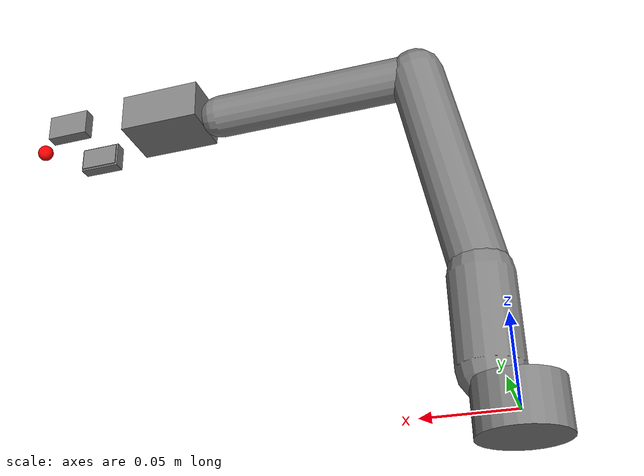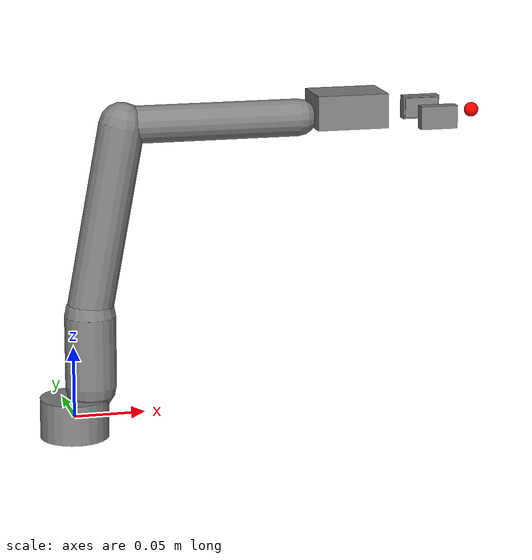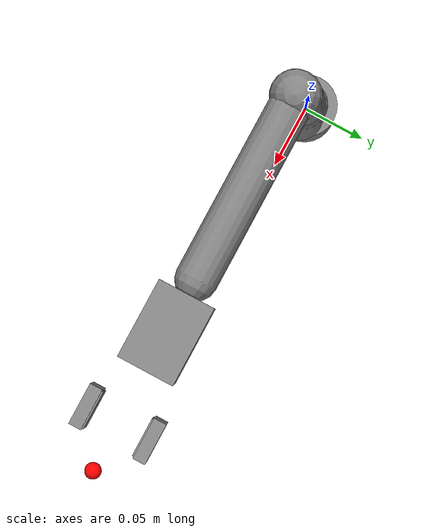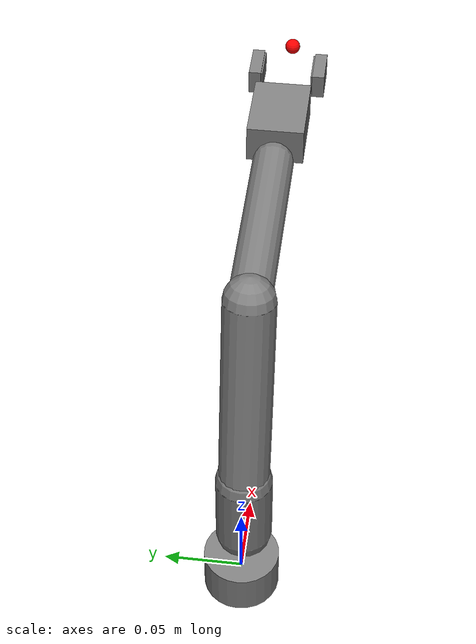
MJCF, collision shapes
<mujoco model="open_manipulator_x">
  <compiler meshdir="../meshes" angle="radian" autolimits="true"/>

  <option timestep="0.002" gravity="0 0 -9.81" integrator="implicitfast"/>

  <default>
    <joint armature="0.01"/>
    <default class="visual">
      <geom contype="0" conaffinity="0" group="0"/>
    </default>
    <default class="collision">
      <geom group="1" condim="4" friction="1.0 0.005 0.0001"/>
    </default>
  </default>

  <asset>
    <mesh name="link1" file="link1.stl" scale="0.001 0.001 0.001"/>
    <mesh name="link2" file="link2.stl" scale="0.001 0.001 0.001"/>
    <mesh name="link3" file="link3.stl" scale="0.001 0.001 0.001"/>
    <mesh name="link4" file="link4.stl" scale="0.001 0.001 0.001"/>
    <mesh name="link5" file="link5.stl" scale="0.001 0.001 0.001"/>
    <mesh name="gripper_left" file="gripper_left_palm.stl" scale="0.001 0.001 0.001"/>
    <mesh name="gripper_right" file="gripper_right_palm.stl" scale="0.001 0.001 0.001"/>

    <material name="grey" rgba="0.5 0.5 0.5 1"/>
    <material name="dark_grey" rgba="0.3 0.3 0.3 1"/>
    <material name="red" rgba="0.8 0.0 0.0 1"/>
    <material name="finger" rgba="0.4 0.4 0.4 1"/>
  </asset>

  <worldbody>
    <!-- Robot base (fixed to world) -->
    <body name="link1" pos="0 0 0">
      <inertial pos="3.0876154e-04 0 -1.2176461e-04" mass="0.079119962"
                fullinertia="1.2505234e-05 2.1898364e-05 1.9267361e-05 0 -1.7855208e-07 0"/>
      <geom type="mesh" mesh="link1" material="grey" class="visual"/>
      <geom type="cylinder" size="0.024 0.014" pos="0 0 0" class="collision"/>

      <body name="link2" pos="0.012 0 0.017">
        <joint name="joint1" type="hinge" axis="0 0 1" range="-3.14159 3.14159" damping="0.1"/>
        <inertial pos="-3.0184870e-04 5.4043684e-04 0.047433464" mass="0.098406837"
                  fullinertia="3.4543422e-05 3.2689329e-05 1.8850320e-05
                               -1.6031095e-08 -3.8375155e-07 2.8511935e-08"/>
        <geom type="mesh" mesh="link2" pos="0 0 0.019" material="grey" class="visual"/>
        <geom type="capsule" fromto="0 0 0.005 0 0 0.055" size="0.018" class="collision"/>

        <body name="link3" pos="0 0 0.0595">
          <joint name="joint2" type="hinge" axis="0 1 0" range="-1.5 1.5" damping="0.1"/>
          <inertial pos="1.0308393e-02 3.7743363e-04 1.0170197e-01" mass="0.13850917"
                    fullinertia="3.3055381e-04 3.4290447e-04 6.0346498e-05
                                 -9.7940978e-08 -3.8505711e-05 -1.5717516e-06"/>
          <geom type="mesh" mesh="link3" material="grey" class="visual"/>
          <geom type="capsule" fromto="0 0 0 0.024 0 0.128" size="0.016" class="collision"/>

          <body name="link4" pos="0.024 0 0.128">
            <joint name="joint3" type="hinge" axis="0 1 0" range="-1.5 1.4" damping="0.1"/>
            <inertial pos="9.0909590e-02 3.8929816e-04 2.2413279e-04" mass="0.13274562"
                      fullinertia="3.0654178e-05 2.4230292e-04 2.5155057e-04
                                   -1.2764155e-06 -2.6874417e-07 1.1559550e-08"/>
            <geom type="mesh" mesh="link4" material="grey" class="visual"/>
            <geom type="capsule" fromto="0 0 0 0.124 0 0" size="0.013" class="collision"/>

            <body name="link5" pos="0.124 0 0">
              <joint name="joint4" type="hinge" axis="0 1 0" range="-1.7 1.97" damping="0.1"/>
              <inertial pos="4.4206755e-02 3.6839985e-07 8.9142216e-03" mass="0.14327573"
                        fullinertia="8.0870749e-05 7.5980465e-05 9.3127351e-05
                                     0 -1.0157896e-06 0"/>
              <geom type="mesh" mesh="link5" material="grey" class="visual"/>
              <geom type="box" size="0.025 0.018 0.012" pos="0.035 0 0.005" class="collision"/>

              <!-- End effector site -->
              <site name="ee_site" pos="0.126 0 0" size="0.005" rgba="1 0 0 1"/>

              <!-- Left gripper finger -->
              <body name="gripper_left" pos="0.0817 0.021 0">
                <joint name="gripper_left_joint" type="slide" axis="0 1 0"
                       range="-0.01 0.019" damping="0.1"/>
                <inertial pos="0 0 0" mass="0.001" diaginertia="1e-06 1e-06 1e-06"/>
                <geom type="mesh" mesh="gripper_left" material="finger" class="visual"/>
                <geom type="box" size="0.013 0.004 0.008" pos="0.013 0 0"
                      name="gripper_left_pad" class="collision" friction="2.0 0.005 0.0001"/>
                <site name="gripper_left_touch" pos="0.013 -0.004 0"
                      size="0.012 0.001 0.007" type="box"/>
              </body>

              <!-- Right gripper finger -->
              <body name="gripper_right" pos="0.0817 -0.021 0">
                <joint name="gripper_right_joint" type="slide" axis="0 -1 0"
                       range="-0.01 0.019" damping="0.1"/>
                <inertial pos="0 0 0" mass="0.001" diaginertia="1e-06 1e-06 1e-06"/>
                <geom type="mesh" mesh="gripper_right" material="finger" class="visual"/>
                <geom type="box" size="0.013 0.004 0.008" pos="0.013 0 0"
                      name="gripper_right_pad" class="collision" friction="2.0 0.005 0.0001"/>
                <site name="gripper_right_touch" pos="0.013 0.004 0"
                      size="0.012 0.001 0.007" type="box"/>
              </body>
            </body>
          </body>
        </body>
      </body>
    </body>
  </worldbody>

  <!-- Exclude adjacent body self-collisions -->
  <contact>
    <exclude body1="link1" body2="link2"/>
    <exclude body1="link2" body2="link3"/>
    <exclude body1="link3" body2="link4"/>
    <exclude body1="link4" body2="link5"/>
    <exclude body1="link5" body2="gripper_left"/>
    <exclude body1="link5" body2="gripper_right"/>
    <exclude body1="gripper_left" body2="gripper_right"/>
  </contact>

  <!-- Gripper mimic: right finger follows left -->
  <equality>
    <joint joint1="gripper_left_joint" joint2="gripper_right_joint"
           polycoef="0 1 0 0 0"/>
  </equality>

  <!-- Position actuators -->
  <actuator>
    <!-- Arm joints (XM430-W350: stall torque ~4.1 Nm) -->
    <position name="joint1_pos" joint="joint1" kp="20" forcerange="-4.1 4.1"/>
    <position name="joint2_pos" joint="joint2" kp="20" forcerange="-4.1 4.1"/>
    <position name="joint3_pos" joint="joint3" kp="20" forcerange="-4.1 4.1"/>
    <position name="joint4_pos" joint="joint4" kp="20" forcerange="-4.1 4.1"/>
    <!-- Gripper (XL430-W250: stall torque ~1.5 Nm) -->
    <position name="gripper_pos" joint="gripper_left_joint" kp="10"
              forcerange="-1.5 1.5"/>
  </actuator>

  <!-- Sensors -->
  <sensor>
    <!-- Joint position -->
    <jointpos name="joint1_pos_sens" joint="joint1"/>
    <jointpos name="joint2_pos_sens" joint="joint2"/>
    <jointpos name="joint3_pos_sens" joint="joint3"/>
    <jointpos name="joint4_pos_sens" joint="joint4"/>
    <jointpos name="gripper_pos_sens" joint="gripper_left_joint"/>

    <!-- Joint velocity -->
    <jointvel name="joint1_vel_sens" joint="joint1"/>
    <jointvel name="joint2_vel_sens" joint="joint2"/>
    <jointvel name="joint3_vel_sens" joint="joint3"/>
    <jointvel name="joint4_vel_sens" joint="joint4"/>

    <!-- Actuator torque (force feedback) -->
    <actuatorfrc name="joint1_torque_sens" actuator="joint1_pos"/>
    <actuatorfrc name="joint2_torque_sens" actuator="joint2_pos"/>
    <actuatorfrc name="joint3_torque_sens" actuator="joint3_pos"/>
    <actuatorfrc name="joint4_torque_sens" actuator="joint4_pos"/>

    <!-- Gripper touch -->
    <touch name="gripper_left_touch_sens" site="gripper_left_touch"/>
    <touch name="gripper_right_touch_sens" site="gripper_right_touch"/>

    <!-- End effector position in world frame -->
    <framepos name="ee_pos_sens" objtype="site" objname="ee_site"/>
  </sensor>
</mujoco>
